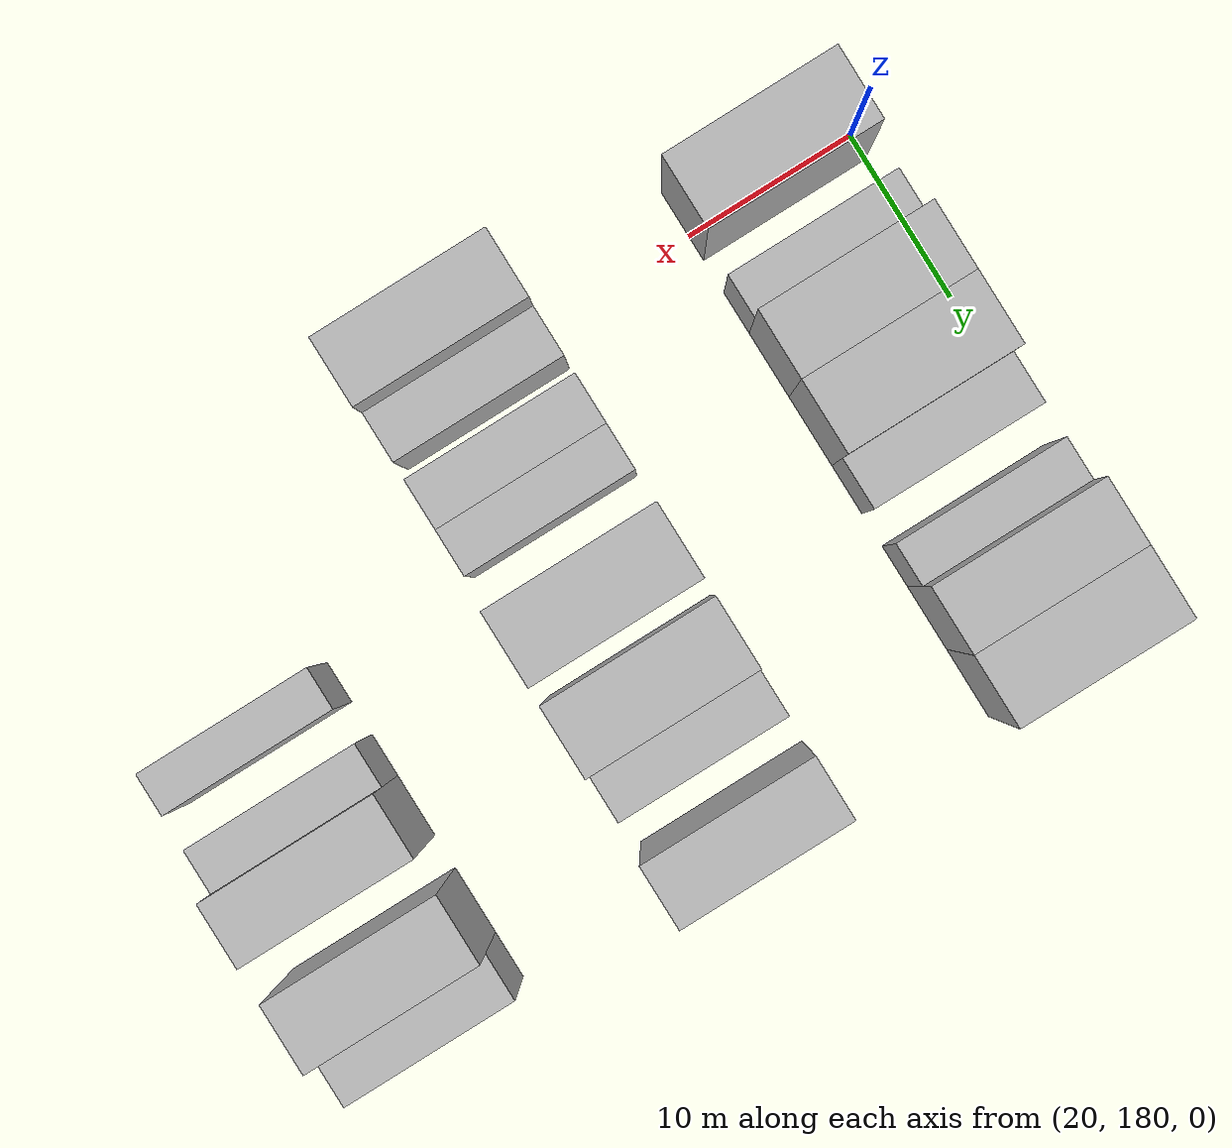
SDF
<sdf version="1.6">
 <world name="default">
  <model name="building_97">
   <static>1</static>
   <pose>25.0000 179.3547 0 0.000000 0.000000 0.000000</pose>
   <link name="link">
    <pose>0 0 4.50 0 0 0</pose>
    <collision name="collision"><geometry><box><size>10.0000 4.2333 9.0000</size></box></geometry></collision>
    <visual name="visual">
     <cast_shadows>0</cast_shadows>
     <geometry><box><size>10.0000 4.2333 9.0000</size></box></geometry>
     <material>
      <script>
       <uri>model://HANNAS_wall/materials/scripts</uri>
       <uri>model://HANNAS_wall/materials/textures</uri>
       <name>vrc/HANNAS_wall</name>
      </script>
     </material>
    </visual>
   </link>
  </model>
  <model name="building_98">
   <static>1</static>
   <pose>25.0000 184.7286 0 0.000000 0.000000 0.000000</pose>
   <link name="link">
    <pose>0 0 3.00 0 0 0</pose>
    <collision name="collision"><geometry><box><size>10.0000 2.5144 6.0000</size></box></geometry></collision>
    <visual name="visual">
     <cast_shadows>0</cast_shadows>
     <geometry><box><size>10.0000 2.5144 6.0000</size></box></geometry>
     <material>
      <script>
       <uri>model://HANNAS_wall/materials/scripts</uri>
       <uri>model://HANNAS_wall/materials/textures</uri>
       <name>vrc/HANNAS_wall</name>
      </script>
     </material>
    </visual>
   </link>
  </model>
  <model name="building_99">
   <static>1</static>
   <pose>25.0000 187.9658 0 0.000000 0.000000 0.000000</pose>
   <link name="link">
    <pose>0 0 4.50 0 0 0</pose>
    <collision name="collision"><geometry><box><size>10.0000 3.9601 9.0000</size></box></geometry></collision>
    <visual name="visual">
     <cast_shadows>0</cast_shadows>
     <geometry><box><size>10.0000 3.9601 9.0000</size></box></geometry>
     <material>
      <script>
       <uri>model://HANNAS_wall/materials/scripts</uri>
       <uri>model://HANNAS_wall/materials/textures</uri>
       <name>vrc/HANNAS_wall</name>
      </script>
     </material>
    </visual>
   </link>
  </model>
  <model name="building_100">
   <static>1</static>
   <pose>25.0000 192.0686 0 0.000000 0.000000 0.000000</pose>
   <link name="link">
    <pose>0 0 4.50 0 0 0</pose>
    <collision name="collision"><geometry><box><size>10.0000 4.2455 9.0000</size></box></geometry></collision>
    <visual name="visual">
     <cast_shadows>0</cast_shadows>
     <geometry><box><size>10.0000 4.2455 9.0000</size></box></geometry>
     <material>
      <script>
       <uri>model://HANNAS_wall/materials/scripts</uri>
       <uri>model://HANNAS_wall/materials/textures</uri>
       <name>vrc/HANNAS_wall</name>
      </script>
     </material>
    </visual>
   </link>
  </model>
  <model name="building_101">
   <static>1</static>
   <pose>25.0000 195.6836 0 0.000000 0.000000 0.000000</pose>
   <link name="link">
    <pose>0 0 3.00 0 0 0</pose>
    <collision name="collision"><geometry><box><size>10.0000 2.9845 6.0000</size></box></geometry></collision>
    <visual name="visual">
     <cast_shadows>0</cast_shadows>
     <geometry><box><size>10.0000 2.9845 6.0000</size></box></geometry>
     <material>
      <script>
       <uri>model://HANNAS_wall/materials/scripts</uri>
       <uri>model://HANNAS_wall/materials/textures</uri>
       <name>vrc/HANNAS_wall</name>
      </script>
     </material>
    </visual>
   </link>
  </model>
  <model name="building_102">
   <static>1</static>
   <pose>25.0000 200.4294 0 0.000000 0.000000 0.000000</pose>
   <link name="link">
    <pose>0 0 3.00 0 0 0</pose>
    <collision name="collision"><geometry><box><size>10.0000 2.5070 6.0000</size></box></geometry></collision>
    <visual name="visual">
     <cast_shadows>0</cast_shadows>
     <geometry><box><size>10.0000 2.5070 6.0000</size></box></geometry>
     <material>
      <script>
       <uri>model://HANNAS_wall/materials/scripts</uri>
       <uri>model://HANNAS_wall/materials/textures</uri>
       <name>vrc/HANNAS_wall</name>
      </script>
     </material>
    </visual>
   </link>
  </model>
  <model name="building_103">
   <static>1</static>
   <pose>25.0000 203.6291 0 0.000000 0.000000 0.000000</pose>
   <link name="link">
    <pose>0 0 4.50 0 0 0</pose>
    <collision name="collision"><geometry><box><size>10.0000 3.8925 9.0000</size></box></geometry></collision>
    <visual name="visual">
     <cast_shadows>0</cast_shadows>
     <geometry><box><size>10.0000 3.8925 9.0000</size></box></geometry>
     <material>
      <script>
       <uri>model://HANNAS_wall/materials/scripts</uri>
       <uri>model://HANNAS_wall/materials/textures</uri>
       <name>vrc/HANNAS_wall</name>
      </script>
     </material>
    </visual>
   </link>
  </model>
  <model name="building_104">
   <static>1</static>
   <pose>25.0000 207.6634 0 0.000000 0.000000 0.000000</pose>
   <link name="link">
    <pose>0 0 4.50 0 0 0</pose>
    <collision name="collision"><geometry><box><size>10.0000 4.1762 9.0000</size></box></geometry></collision>
    <visual name="visual">
     <cast_shadows>0</cast_shadows>
     <geometry><box><size>10.0000 4.1762 9.0000</size></box></geometry>
     <material>
      <script>
       <uri>model://HANNAS_wall/materials/scripts</uri>
       <uri>model://HANNAS_wall/materials/textures</uri>
       <name>vrc/HANNAS_wall</name>
      </script>
     </material>
    </visual>
   </link>
  </model>
  <model name="building_212">
   <static>1</static>
   <pose>44.0000 177.6865 0 0.000000 0.000000 0.000000</pose>
   <link name="link">
    <pose>0 0 4.50 0 0 0</pose>
    <collision name="collision"><geometry><box><size>10.0000 3.9689 9.0000</size></box></geometry></collision>
    <visual name="visual">
     <cast_shadows>0</cast_shadows>
     <geometry><box><size>10.0000 3.9689 9.0000</size></box></geometry>
     <material>
      <script>
       <uri>model://HANNAS_wall/materials/scripts</uri>
       <uri>model://HANNAS_wall/materials/textures</uri>
       <name>vrc/HANNAS_wall</name>
      </script>
     </material>
    </visual>
   </link>
  </model>
  <model name="building_213">
   <static>1</static>
   <pose>44.0000 181.1216 0 0.000000 0.000000 0.000000</pose>
   <link name="link">
    <pose>0 0 3.00 0 0 0</pose>
    <collision name="collision"><geometry><box><size>10.0000 2.9013 6.0000</size></box></geometry></collision>
    <visual name="visual">
     <cast_shadows>0</cast_shadows>
     <geometry><box><size>10.0000 2.9013 6.0000</size></box></geometry>
     <material>
      <script>
       <uri>model://HANNAS_wall/materials/scripts</uri>
       <uri>model://HANNAS_wall/materials/textures</uri>
       <name>vrc/HANNAS_wall</name>
      </script>
     </material>
    </visual>
   </link>
  </model>
  <model name="building_214">
   <static>1</static>
   <pose>44.0000 185.0417 0 0.000000 0.000000 0.000000</pose>
   <link name="link">
    <pose>0 0 3.00 0 0 0</pose>
    <collision name="collision"><geometry><box><size>10.0000 2.9390 6.0000</size></box></geometry></collision>
    <visual name="visual">
     <cast_shadows>0</cast_shadows>
     <geometry><box><size>10.0000 2.9390 6.0000</size></box></geometry>
     <material>
      <script>
       <uri>model://HANNAS_wall/materials/scripts</uri>
       <uri>model://HANNAS_wall/materials/textures</uri>
       <name>vrc/HANNAS_wall</name>
      </script>
     </material>
    </visual>
   </link>
  </model>
  <model name="building_215">
   <static>1</static>
   <pose>44.0000 187.8709 0 0.000000 0.000000 0.000000</pose>
   <link name="link">
    <pose>0 0 3.00 0 0 0</pose>
    <collision name="collision"><geometry><box><size>10.0000 2.7193 6.0000</size></box></geometry></collision>
    <visual name="visual">
     <cast_shadows>0</cast_shadows>
     <geometry><box><size>10.0000 2.7193 6.0000</size></box></geometry>
     <material>
      <script>
       <uri>model://HANNAS_wall/materials/scripts</uri>
       <uri>model://HANNAS_wall/materials/textures</uri>
       <name>vrc/HANNAS_wall</name>
      </script>
     </material>
    </visual>
   </link>
  </model>
  <model name="building_216">
   <static>1</static>
   <pose>44.0000 193.4069 0 0.000000 0.000000 0.000000</pose>
   <link name="link">
    <pose>0 0 4.50 0 0 0</pose>
    <collision name="collision"><geometry><box><size>10.0000 4.3528 9.0000</size></box></geometry></collision>
    <visual name="visual">
     <cast_shadows>0</cast_shadows>
     <geometry><box><size>10.0000 4.3528 9.0000</size></box></geometry>
     <material>
      <script>
       <uri>model://HANNAS_wall/materials/scripts</uri>
       <uri>model://HANNAS_wall/materials/textures</uri>
       <name>vrc/HANNAS_wall</name>
      </script>
     </material>
    </visual>
   </link>
  </model>
  <model name="building_217">
   <static>1</static>
   <pose>44.0000 198.6674 0 0.000000 0.000000 0.000000</pose>
   <link name="link">
    <pose>0 0 4.50 0 0 0</pose>
    <collision name="collision"><geometry><box><size>10.0000 4.1682 9.0000</size></box></geometry></collision>
    <visual name="visual">
     <cast_shadows>0</cast_shadows>
     <geometry><box><size>10.0000 4.1682 9.0000</size></box></geometry>
     <material>
      <script>
       <uri>model://HANNAS_wall/materials/scripts</uri>
       <uri>model://HANNAS_wall/materials/textures</uri>
       <name>vrc/HANNAS_wall</name>
      </script>
     </material>
    </visual>
   </link>
  </model>
  <model name="building_218">
   <static>1</static>
   <pose>44.0000 202.1941 0 0.000000 0.000000 0.000000</pose>
   <link name="link">
    <pose>0 0 3.00 0 0 0</pose>
    <collision name="collision"><geometry><box><size>10.0000 2.8851 6.0000</size></box></geometry></collision>
    <visual name="visual">
     <cast_shadows>0</cast_shadows>
     <geometry><box><size>10.0000 2.8851 6.0000</size></box></geometry>
     <material>
      <script>
       <uri>model://HANNAS_wall/materials/scripts</uri>
       <uri>model://HANNAS_wall/materials/textures</uri>
       <name>vrc/HANNAS_wall</name>
      </script>
     </material>
    </visual>
   </link>
  </model>
  <model name="building_219">
   <static>1</static>
   <pose>44.0000 207.4664 0 0.000000 0.000000 0.000000</pose>
   <link name="link">
    <pose>0 0 4.50 0 0 0</pose>
    <collision name="collision"><geometry><box><size>10.0000 3.6595 9.0000</size></box></geometry></collision>
    <visual name="visual">
     <cast_shadows>0</cast_shadows>
     <geometry><box><size>10.0000 3.6595 9.0000</size></box></geometry>
     <material>
      <script>
       <uri>model://HANNAS_wall/materials/scripts</uri>
       <uri>model://HANNAS_wall/materials/textures</uri>
       <name>vrc/HANNAS_wall</name>
      </script>
     </material>
    </visual>
   </link>
  </model>
  <model name="building_325">
   <static>1</static>
   <pose>63.0000 190.1370 0 0.000000 0.000000 0.000000</pose>
   <link name="link">
    <pose>0 0 3.00 0 0 0</pose>
    <collision name="collision"><geometry><box><size>10.0000 2.4500 6.0000</size></box></geometry></collision>
    <visual name="visual">
     <cast_shadows>0</cast_shadows>
     <geometry><box><size>10.0000 2.4500 6.0000</size></box></geometry>
     <material>
      <script>
       <uri>model://HANNAS_wall/materials/scripts</uri>
       <uri>model://HANNAS_wall/materials/textures</uri>
       <name>vrc/HANNAS_wall</name>
      </script>
     </material>
    </visual>
   </link>
  </model>
  <model name="building_326">
   <static>1</static>
   <pose>63.0000 194.6412 0 0.000000 0.000000 0.000000</pose>
   <link name="link">
    <pose>0 0 3.00 0 0 0</pose>
    <collision name="collision"><geometry><box><size>10.0000 2.5584 6.0000</size></box></geometry></collision>
    <visual name="visual">
     <cast_shadows>0</cast_shadows>
     <geometry><box><size>10.0000 2.5584 6.0000</size></box></geometry>
     <material>
      <script>
       <uri>model://HANNAS_wall/materials/scripts</uri>
       <uri>model://HANNAS_wall/materials/textures</uri>
       <name>vrc/HANNAS_wall</name>
      </script>
     </material>
    </visual>
   </link>
  </model>
  <model name="building_327">
   <static>1</static>
   <pose>63.0000 197.7717 0 0.000000 0.000000 0.000000</pose>
   <link name="link">
    <pose>0 0 4.50 0 0 0</pose>
    <collision name="collision"><geometry><box><size>10.0000 3.7025 9.0000</size></box></geometry></collision>
    <visual name="visual">
     <cast_shadows>0</cast_shadows>
     <geometry><box><size>10.0000 3.7025 9.0000</size></box></geometry>
     <material>
      <script>
       <uri>model://HANNAS_wall/materials/scripts</uri>
       <uri>model://HANNAS_wall/materials/textures</uri>
       <name>vrc/HANNAS_wall</name>
      </script>
     </material>
    </visual>
   </link>
  </model>
  <model name="building_328">
   <static>1</static>
   <pose>63.0000 203.6240 0 0.000000 0.000000 0.000000</pose>
   <link name="link">
    <pose>0 0 4.50 0 0 0</pose>
    <collision name="collision"><geometry><box><size>10.0000 4.0023 9.0000</size></box></geometry></collision>
    <visual name="visual">
     <cast_shadows>0</cast_shadows>
     <geometry><box><size>10.0000 4.0023 9.0000</size></box></geometry>
     <material>
      <script>
       <uri>model://HANNAS_wall/materials/scripts</uri>
       <uri>model://HANNAS_wall/materials/textures</uri>
       <name>vrc/HANNAS_wall</name>
      </script>
     </material>
    </visual>
   </link>
  </model>
  <model name="building_329">
   <static>1</static>
   <pose>63.0000 207.0069 0 0.000000 0.000000 0.000000</pose>
   <link name="link">
    <pose>0 0 3.00 0 0 0</pose>
    <collision name="collision"><geometry><box><size>10.0000 2.7633 6.0000</size></box></geometry></collision>
    <visual name="visual">
     <cast_shadows>0</cast_shadows>
     <geometry><box><size>10.0000 2.7633 6.0000</size></box></geometry>
     <material>
      <script>
       <uri>model://HANNAS_wall/materials/scripts</uri>
       <uri>model://HANNAS_wall/materials/textures</uri>
       <name>vrc/HANNAS_wall</name>
      </script>
     </material>
    </visual>
   </link>
  </model>
 </world>
</sdf>
